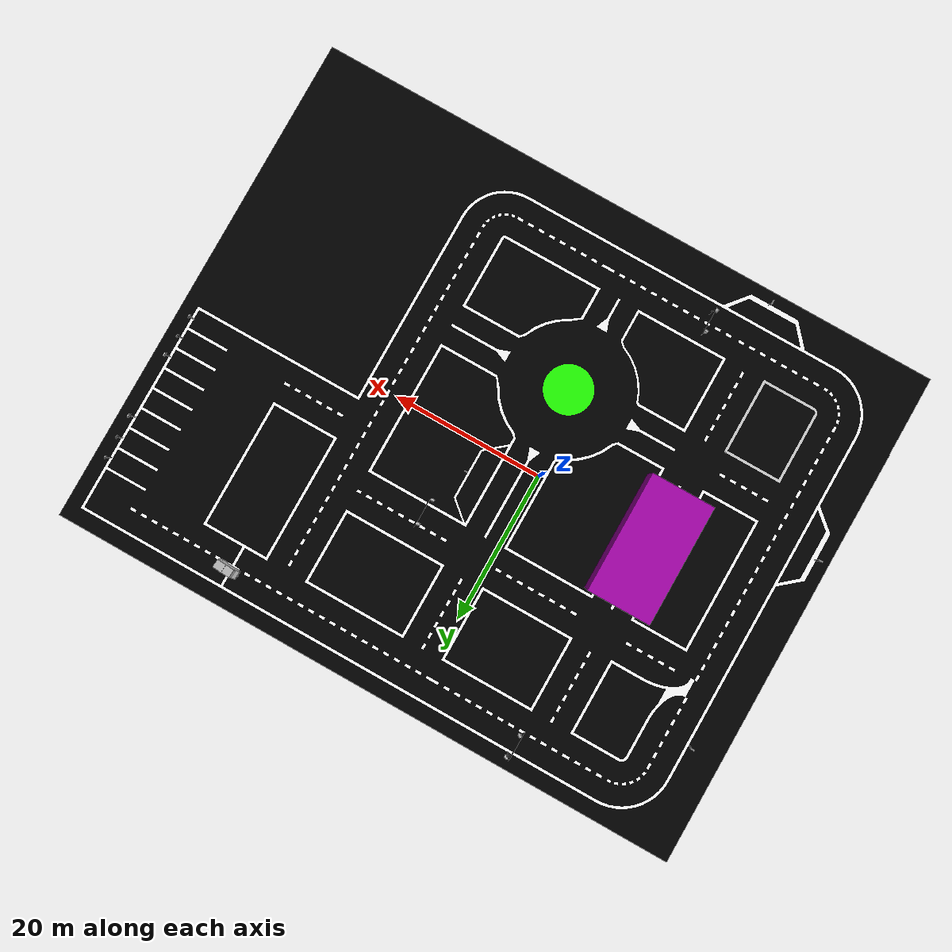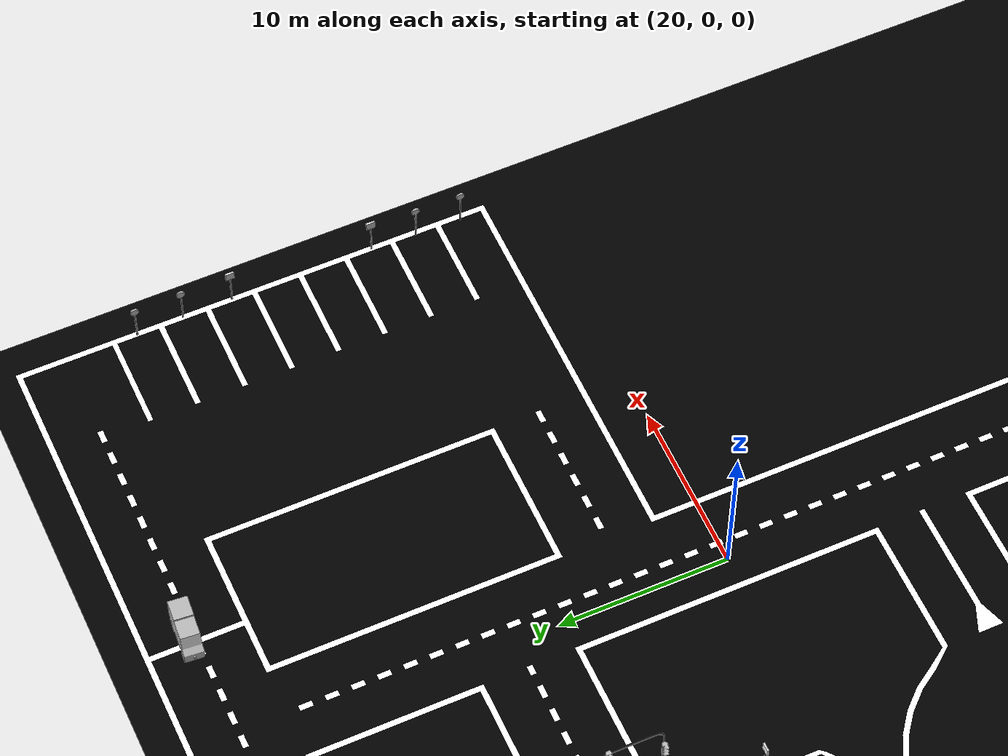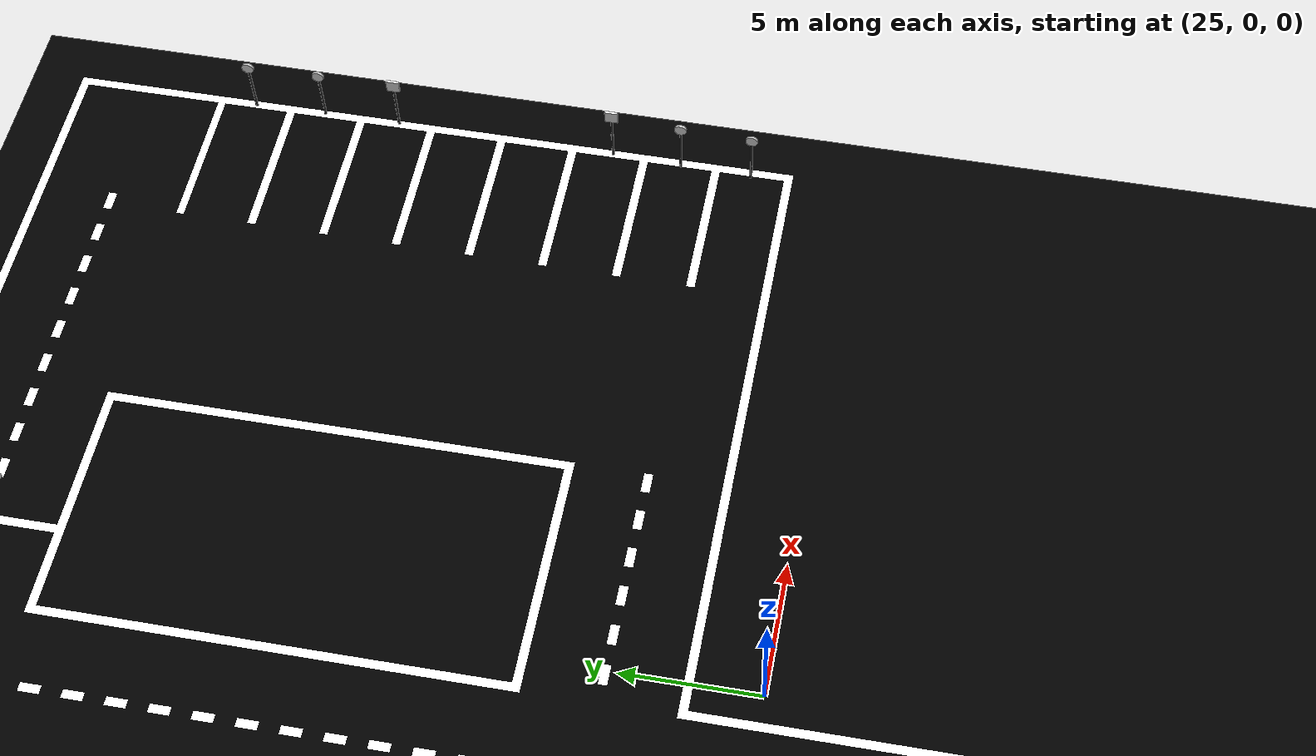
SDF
<sdf version="1.7">
 <world name="default">
  <light name="sun" type="directional">
   <pose>0 0 10 0 -0 0</pose>
   <diffuse>0.8 0.8 0.8 1</diffuse>
   <specular>0.2 0.2 0.2 1</specular>
   <attenuation>
    <range>1000</range>
    <constant>0.9</constant>
    <linear>0.01</linear>
    <quadratic>0.001</quadratic>
   </attenuation>
   <direction>-0.5 0.1 -0.9</direction>
   <spot><inner_angle>0</inner_angle><outer_angle>0</outer_angle><falloff>0</falloff></spot>
  </light>
  <gravity>0 0 -9.8</gravity>
  <magnetic_field>6e-06 2.3e-05 -4.2e-05</magnetic_field>
  <atmosphere type="adiabatic"/>
  <physics type="ode">
   <max_step_size>0.001</max_step_size>
   <real_time_factor>1</real_time_factor>
   <real_time_update_rate>1000</real_time_update_rate>
  </physics>
  <scene><ambient>0.4 0.4 0.4 1</ambient><background>0.7 0.7 0.7 1</background><shadows>1</shadows></scene>
  <spherical_coordinates>
   <surface_model>EARTH_WGS84</surface_model>
   <latitude_deg>0</latitude_deg>
   <longitude_deg>0</longitude_deg>
   <elevation>0</elevation>
   <heading_deg>0</heading_deg>
  </spherical_coordinates>
  <model name="road">
   <static>1</static>
   <link name="link">
    <collision name="collision">
     <geometry><mesh><uri>model://road/meshes/road_full0.dae</uri><scale>1 1 1</scale></mesh></geometry>
    </collision>
    <visual name="visual">
     <geometry><mesh><uri>model://road/meshes/road_full0.dae</uri><scale>1 1 1</scale></mesh></geometry>
    </visual>
   </link>
   <pose>11.9855 3.13939 0 0 -0 0</pose>
  </model>
  <light name="user_directional_light_0" type="directional">
   <pose>-2.50538 -21.004 1 0 -0 0</pose>
   <diffuse>0.5 0.5 0.5 1</diffuse>
   <specular>0.1 0.1 0.1 1</specular>
   <direction>0.1 0.1 -0.9</direction>
   <attenuation>
    <range>20</range>
    <constant>0.5</constant>
    <linear>0.01</linear>
    <quadratic>0.001</quadratic>
   </attenuation>
   <spot><inner_angle>0</inner_angle><outer_angle>0</outer_angle><falloff>0</falloff></spot>
  </light>
  <light name="user_directional_light_0_clone" type="directional">
   <pose>-3.87677 -20.3859 1 0 -0 0</pose>
   <diffuse>0.5 0.5 0.5 1</diffuse>
   <specular>0.1 0.1 0.1 1</specular>
   <direction>0.109764 0.109764 -0.987878</direction>
   <attenuation>
    <range>20</range>
    <constant>0.5</constant>
    <linear>0.01</linear>
    <quadratic>0.001</quadratic>
   </attenuation>
   <spot><inner_angle>0</inner_angle><outer_angle>0</outer_angle><falloff>0</falloff></spot>
  </light>
  <light name="user_directional_light_0_clone_1" type="directional">
   <pose>-6.43132 -21.3669 1 0 -0 0</pose>
   <diffuse>0.5 0.5 0.5 1</diffuse>
   <specular>0.1 0.1 0.1 1</specular>
   <direction>0.109764 0.109764 -0.987878</direction>
   <attenuation>
    <range>20</range>
    <constant>0.5</constant>
    <linear>0.01</linear>
    <quadratic>0.001</quadratic>
   </attenuation>
   <spot><inner_angle>0</inner_angle><outer_angle>0</outer_angle><falloff>0</falloff></spot>
  </light>
  <light name="user_directional_light_0_clone_0" type="directional">
   <pose>-8.74032 -21.6667 1 0 -0 0</pose>
   <diffuse>0.5 0.5 0.5 1</diffuse>
   <specular>0.1 0.1 0.1 1</specular>
   <direction>0.109764 0.109764 -0.987878</direction>
   <attenuation>
    <range>20</range>
    <constant>0.5</constant>
    <linear>0.01</linear>
    <quadratic>0.001</quadratic>
   </attenuation>
   <spot><inner_angle>0</inner_angle><outer_angle>0</outer_angle><falloff>0</falloff></spot>
  </light>
  <model name="Sign Parkyasak">
   <static>1</static>
   <link name="link">
    <collision name="collision">
     <geometry><mesh><uri>model://sign_parkyasak/meshes/model.dae</uri><scale>1 1 1</scale></mesh></geometry>
    </collision>
    <visual name="visual">
     <geometry><mesh><uri>model://sign_parkyasak/meshes/model.dae</uri><scale>1 1 1</scale></mesh></geometry>
    </visual>
   </link>
   <pose>46.4175 4 0 0 0 -3.14159</pose>
  </model>
  <model name="Sign Parkyapilmaz">
   <static>1</static>
   <link name="link">
    <collision name="collision">
     <geometry><mesh><uri>model://sign_parkyapilmaz/meshes/model.dae</uri><scale>1 1 1</scale></mesh></geometry>
    </collision>
    <visual name="visual">
     <geometry><mesh><uri>model://sign_parkyapilmaz/meshes/model.dae</uri><scale>1 1 1</scale></mesh></geometry>
    </visual>
   </link>
   <pose>46.4875 6.73627 0 0 -0 3.14159</pose>
  </model>
  <model name="Sign Engelli">
   <static>1</static>
   <link name="link">
    <collision name="collision">
     <geometry><mesh><uri>model://sign_engelli/meshes/model.dae</uri><scale>1 1 1</scale></mesh></geometry>
    </collision>
    <visual name="visual">
     <geometry><mesh><uri>model://sign_engelli/meshes/model.dae</uri><scale>1 1 1</scale></mesh></geometry>
    </visual>
   </link>
   <pose>46.6344 9.43355 0 0 0 -3.14159</pose>
  </model>
  <model name="Sign Engelli_clone">
   <static>1</static>
   <link name="link">
    <collision name="collision">
     <geometry><mesh><uri>model://sign_engelli/meshes/model.dae</uri><scale>1 1 1</scale></mesh></geometry>
    </collision>
    <visual name="visual">
     <geometry><mesh><uri>model://sign_engelli/meshes/model.dae</uri><scale>1 1 1</scale></mesh></geometry>
    </visual>
   </link>
   <pose>46.6759 17.9566 0 0 0 -3.14159</pose>
  </model>
  <model name="Sign Parkyapilmaz_clone">
   <static>1</static>
   <link name="link">
    <collision name="collision">
     <geometry><mesh><uri>model://sign_parkyapilmaz/meshes/model.dae</uri><scale>1 1 1</scale></mesh></geometry>
    </collision>
    <visual name="visual">
     <geometry><mesh><uri>model://sign_parkyapilmaz/meshes/model.dae</uri><scale>1 1 1</scale></mesh></geometry>
    </visual>
   </link>
   <pose>46.6598 20.9187 0 0 -0 3.14159</pose>
  </model>
  <model name="Sign Parkyasak_clone">
   <static>1</static>
   <link name="link">
    <collision name="collision">
     <geometry><mesh><uri>model://sign_parkyasak/meshes/model.dae</uri><scale>1 1 1</scale></mesh></geometry>
    </collision>
    <visual name="visual">
     <geometry><mesh><uri>model://sign_parkyasak/meshes/model.dae</uri><scale>1 1 1</scale></mesh></geometry>
    </visual>
   </link>
   <pose>46.6016 23.6859 0 0 0 -3.14159</pose>
  </model>
  <model name="Sign Durak">
   <static>1</static>
   <link name="link">
    <collision name="collision">
     <geometry><mesh><uri>model://sign_durak/meshes/model.dae</uri><scale>1 1 1</scale></mesh></geometry>
    </collision>
    <visual name="visual">
     <geometry><mesh><uri>model://sign_durak/meshes/model.dae</uri><scale>1 1 1</scale></mesh></geometry>
    </visual>
   </link>
   <pose>7.94947 3.92868 0 0 0 -1.5708</pose>
  </model>
  <model name="Sign Durak_0">
   <static>1</static>
   <link name="link">
    <collision name="collision">
     <geometry><mesh><uri>model://sign_durak/meshes/model.dae</uri><scale>1 1 1</scale></mesh></geometry>
    </collision>
    <visual name="visual">
     <geometry><mesh><uri>model://sign_durak/meshes/model.dae</uri><scale>1 1 1</scale></mesh></geometry>
    </visual>
   </link>
   <pose>-34.2486 -7.7009 0 0 -0 1.5708</pose>
  </model>
  <model name="Sign Durak_0_clone">
   <static>1</static>
   <link name="link">
    <collision name="collision">
     <geometry><mesh><uri>model://sign_durak/meshes/model.dae</uri><scale>1 1 1</scale></mesh></geometry>
    </collision>
    <visual name="visual">
     <geometry><mesh><uri>model://sign_durak/meshes/model.dae</uri><scale>1 1 1</scale></mesh></geometry>
    </visual>
   </link>
   <pose>-14.2561 -32.2097 0 0 0 -3.14159</pose>
  </model>
  <model name="Sign Ikiyon">
   <static>1</static>
   <link name="link">
    <collision name="collision">
     <geometry><mesh><uri>model://sign_ikiyon/meshes/model.dae</uri><scale>1 1 1</scale></mesh></geometry>
    </collision>
    <visual name="visual">
     <geometry><mesh><uri>model://sign_ikiyon/meshes/model.dae</uri><scale>1 1 1</scale></mesh></geometry>
    </visual>
   </link>
   <pose>-31.6764 19.3224 0 0 -0 1.5708</pose>
  </model>
  <model name="robotaksi">
   <pose>28.1344 28.2437 0.010253 -0.007152 -1e-06 1.48811</pose>
   <link name="base_link">
    <inertial>
     <inertia><ixx>1</ixx><ixy>0</ixy><ixz>0</ixz><iyy>1</iyy><iyz>0</iyz><izz>1</izz></inertia>
     <mass>1</mass>
    </inertial>
   </link>
   <joint name="chassis_link_joint" type="fixed"><parent>base_link</parent><child>chassis_link</child></joint>
   <joint name="hokuyo_joint" type="fixed">
    <parent>base_link</parent>
    <child>hokuyo_link</child>
    <axis><xyz>0 0 1</xyz><limit><lower>-1e+16</lower><upper>1e+16</upper></limit></axis>
   </joint>
   <link name="hokuyo_link">
    <sensor name="head_hokuyo_sensor" type="ray">
     <always_on>1</always_on>
     <visualize>1</visualize>
     <pose relative_to="base_link">0 2.34 0.72 0 -0 1.5708</pose>
     <update_rate>40</update_rate>
     <ray>
      <scan>
       <horizontal>
        <samples>720</samples>
        <resolution>1</resolution>
        <min_angle>-1.5708</min_angle>
        <max_angle>1.5708</max_angle>
       </horizontal>
       <vertical><samples>1</samples><min_angle>0</min_angle><max_angle>0</max_angle></vertical>
      </scan>
      <range><min>0.12</min><max>30</max><resolution>0.01</resolution></range>
      <noise><type>gaussian</type><mean>0</mean><stddev>0.01</stddev></noise>
     </ray>
     <plugin name="gazebo_ros_head_hokuyo_controller" filename="libgazebo_ros_ray_sensor.so">
      <ros><remapping>~/out:=scan</remapping></ros>
      <output_type>sensor_msgs/LaserScan</output_type>
      <frame_name>hokuyo_link</frame_name>
     </plugin>
    </sensor>
    <inertial>
     <inertia><ixx>1</ixx><ixy>0</ixy><ixz>0</ixz><iyy>1</iyy><iyz>0</iyz><izz>1</izz></inertia>
     <mass>1</mass>
    </inertial>
   </link>
   <link name="chassis_link">
    <inertial>
     <pose>1e-06 0.07307 0.65096 0 -0 0</pose>
     <mass>1580</mass>
     <inertia>
      <ixx>1997.86</ixx>
      <ixy>-3e-05</ixy>
      <ixz>-1e-06</ixz>
      <iyy>442.769</iyy>
      <iyz>62.5206</iyz>
      <izz>2238.05</izz>
     </inertia>
    </inertial>
    <collision name="chassis_link_fixed_joint_lump__chassis_link_collision">
     <pose>0 0 0.46936 0 -0 0</pose>
     <geometry>
      <mesh><scale>0.001 0.001 0.001</scale><uri>model://autocar/meshes/chassis_link.stl</uri></mesh>
     </geometry>
     <surface><friction><ode><mu>0.2</mu><mu2>0.2</mu2></ode></friction></surface>
    </collision>
    <visual name="chassis_link_fixed_joint_lump__chassis_link_visual">
     <pose>0 2.25 0 0 -0 1.57</pose>
     <geometry><mesh><uri>model://robotaksi/meshes/robotaksi_full.dae</uri></mesh></geometry>
    </visual>
    <self_collide>1</self_collide>
   </link>
   <joint name="bl_axle" type="revolute">
    <pose relative_to="chassis_link">-0.875 -1.01364 0.324997 0 -0 0</pose>
    <parent>chassis_link</parent>
    <child>bl_1</child>
    <axis>
     <xyz>-1 0 0</xyz>
     <dynamics>
      <friction>12.0316</friction>
      <spring_reference>0</spring_reference>
      <spring_stiffness>0</spring_stiffness>
     </dynamics>
     <limit><lower>-1e+16</lower><upper>1e+16</upper></limit>
    </axis>
   </joint>
   <link name="bl_1">
    <pose relative_to="bl_axle">0 0 0 0 -0 0</pose>
    <inertial>
     <pose>-0.0377 0 -0 0 -0 0</pose>
     <mass>24.5</mass>
     <inertia><ixx>1.84514</ixx><ixy>0</ixy><ixz>0</ixz><iyy>1.04961</iyy><iyz>0</iyz><izz>1.04961</izz></inertia>
    </inertial>
    <collision name="bl_1_collision">
     <pose relative_to="bl_axle">0 0 0 3.14159 1.57079 3.14159</pose>
     <geometry><cylinder><radius>0.3425</radius><length>0.22</length></cylinder></geometry>
     <surface><friction><ode><mu>1.7</mu><mu2>1.7</mu2></ode></friction></surface>
    </collision>
    <self_collide>1</self_collide>
   </link>
   <joint name="br_axle" type="revolute">
    <pose relative_to="chassis_link">0.875 -1.01364 0.324997 0 -0 0</pose>
    <parent>chassis_link</parent>
    <child>br_1</child>
    <axis>
     <xyz>-1 0 0</xyz>
     <dynamics>
      <friction>12.0316</friction>
      <spring_reference>0</spring_reference>
      <spring_stiffness>0</spring_stiffness>
     </dynamics>
     <limit><lower>-1e+16</lower><upper>1e+16</upper></limit>
    </axis>
   </joint>
   <link name="br_1">
    <pose relative_to="br_axle">0 0 0 0 -0 0</pose>
    <inertial>
     <pose>-0.0377 0 -0 0 -0 0</pose>
     <mass>24.5</mass>
     <inertia><ixx>1.84514</ixx><ixy>0</ixy><ixz>0</ixz><iyy>1.04961</iyy><iyz>0</iyz><izz>1.04961</izz></inertia>
    </inertial>
    <collision name="br_1_collision">
     <pose relative_to="br_axle">0 0 0 3.14159 1.57079 3.14159</pose>
     <geometry><cylinder><radius>0.3425</radius><length>0.22</length></cylinder></geometry>
     <surface><friction><ode><mu>1.7</mu><mu2>1.7</mu2></ode></friction></surface>
    </collision>
    <self_collide>1</self_collide>
   </link>
   <joint name="l_steer" type="revolute">
    <pose relative_to="chassis_link">-0.825 1.51736 0.324997 0 -0 0</pose>
    <parent>chassis_link</parent>
    <child>l_steer_1</child>
    <axis>
     <xyz>0 0 1</xyz>
     <limit><lower>-0.95</lower><upper>0.95</upper></limit>
     <dynamics>
      <friction>18.0474</friction>
      <spring_reference>0</spring_reference>
      <spring_stiffness>0</spring_stiffness>
     </dynamics>
    </axis>
   </joint>
   <link name="l_steer_1">
    <pose relative_to="l_steer">0 0 0 0 -0 0</pose>
    <inertial>
     <pose>0.003381 0 0.02162 0 -0 0</pose>
     <mass>1</mass>
     <inertia><ixx>1</ixx><ixy>0</ixy><ixz>0</ixz><iyy>1</iyy><iyz>0</iyz><izz>1</izz></inertia>
    </inertial>
    <self_collide>1</self_collide>
   </link>
   <joint name="fl_axle" type="revolute">
    <pose relative_to="l_steer_1">-0.05 0 0 0 -0 0</pose>
    <parent>l_steer_1</parent>
    <child>fl_1</child>
    <axis>
     <xyz>-1 0 0</xyz>
     <dynamics>
      <friction>12.0316</friction>
      <spring_reference>0</spring_reference>
      <spring_stiffness>0</spring_stiffness>
     </dynamics>
     <limit><lower>-1e+16</lower><upper>1e+16</upper></limit>
    </axis>
   </joint>
   <link name="fl_1">
    <pose relative_to="fl_axle">0 0 0 0 -0 0</pose>
    <inertial>
     <pose>-0.0377 0 -0 0 -0 0</pose>
     <mass>24.5</mass>
     <inertia><ixx>1.84514</ixx><ixy>0</ixy><ixz>0</ixz><iyy>1.04961</iyy><iyz>0</iyz><izz>1.04961</izz></inertia>
    </inertial>
    <collision name="fl_1_collision">
     <pose>0.875 -1.5174 0.1444 0 -0 0</pose>
     <geometry><mesh><scale>0.001 0.001 0.001</scale><uri>model://autocar/meshes/fl_1.stl</uri></mesh></geometry>
     <surface><friction><ode><mu>1.1</mu><mu2>1.1</mu2></ode></friction></surface>
    </collision>
    <self_collide>1</self_collide>
   </link>
   <joint name="r_steer" type="revolute">
    <pose relative_to="chassis_link">0.825 1.51736 0.324997 0 -0 0</pose>
    <parent>chassis_link</parent>
    <child>r_steer_1</child>
    <axis>
     <xyz>0 0 1</xyz>
     <limit><lower>-0.95</lower><upper>0.95</upper></limit>
     <dynamics>
      <damping>0.01</damping>
      <friction>18.0474</friction>
      <spring_reference>0</spring_reference>
      <spring_stiffness>0</spring_stiffness>
     </dynamics>
    </axis>
   </joint>
   <link name="r_steer_1">
    <pose relative_to="r_steer">0 0 0 0 -0 0</pose>
    <inertial>
     <pose>0.003381 0 0.02162 0 -0 0</pose>
     <mass>1</mass>
     <inertia><ixx>1</ixx><ixy>0</ixy><ixz>0</ixz><iyy>1</iyy><iyz>0</iyz><izz>1</izz></inertia>
    </inertial>
    <self_collide>1</self_collide>
   </link>
   <joint name="fr_axle" type="revolute">
    <pose relative_to="r_steer_1">0.05 0 0 0 -0 0</pose>
    <parent>r_steer_1</parent>
    <child>fr_1</child>
    <axis>
     <xyz>-1 0 0</xyz>
     <dynamics>
      <friction>12.0316</friction>
      <spring_reference>0</spring_reference>
      <spring_stiffness>0</spring_stiffness>
     </dynamics>
     <limit><lower>-1e+16</lower><upper>1e+16</upper></limit>
    </axis>
   </joint>
   <link name="fr_1">
    <pose relative_to="fr_axle">0 0 0 0 -0 0</pose>
    <inertial>
     <pose>-0.0377 0 -0 0 -0 0</pose>
     <mass>24.5</mass>
     <inertia><ixx>1.84514</ixx><ixy>0</ixy><ixz>0</ixz><iyy>1.04961</iyy><iyz>0</iyz><izz>1.04961</izz></inertia>
    </inertial>
    <collision name="fr_1_collision">
     <pose>-0.875 -1.5174 0.1444 0 -0 0</pose>
     <geometry><mesh><scale>0.001 0.001 0.001</scale><uri>model://autocar/meshes/fr_1.stl</uri></mesh></geometry>
     <surface><friction><ode><mu>1.7</mu><mu2>1.7</mu2></ode></friction></surface>
    </collision>
    <self_collide>1</self_collide>
   </link>
   <link name="steering_wheel">
    <inertial>
     <inertia><ixx>1</ixx><ixy>0</ixy><ixz>0</ixz><iyy>1</iyy><iyz>0</iyz><izz>1</izz></inertia>
     <mass>1</mass>
    </inertial>
   </link>
   <joint name="steering_joint" type="revolute">
    <pose>-0.002 0 0 0 -0 0</pose>
    <parent>chassis_link</parent>
    <child>steering_wheel</child>
    <axis>
     <xyz>-0.964118 0.000768 0.265556</xyz>
     <limit><lower>-100</lower><upper>100</upper></limit>
     <dynamics>
      <damping>1</damping>
      <spring_reference>0</spring_reference>
      <spring_stiffness>0</spring_stiffness>
     </dynamics>
     <use_parent_model_frame>1</use_parent_model_frame>
    </axis>
    <physics><ode><cfm_damping>1</cfm_damping><limit><cfm>0</cfm><erp>0.2</erp></limit></ode></physics>
   </joint>
   <link name="camera_link">
    <pose relative_to="base_link">0 2.34 0.72 0 -0 1.5708</pose>
    <visual name="visual"><geometry><box><size>0.1 0.1 0.1</size></box></geometry></visual>
    <sensor name="camera_sensor" type="multicamera">
     <always_on>1</always_on>
     <update_rate>100</update_rate>
     <camera name="left">
      <pose>0 -0.12 0 0 -0 0</pose>
      <horizontal_fov>1.91986</horizontal_fov>
      <image><width>672</width><height>376</height><format>R8G8B8</format></image>
      <clip><near>0.3</near><far>130</far></clip>
      <vertical_fov>1.2217304764</vertical_fov>
     </camera>
     <camera name="right">
      <pose>0 0.12 0 0 -0 0</pose>
      <horizontal_fov>1.91986</horizontal_fov>
      <image><width>672</width><height>376</height><format>R8G8B8</format></image>
      <clip><near>0.3</near><far>130</far></clip>
      <vertical_fov>1.2217304764</vertical_fov>
     </camera>
     <plugin name="camera_controller" filename="libgazebo_ros_camera.so">
      <ros><namespace>zed_cam</namespace></ros>
      <frameName>camera_link</frameName>
     </plugin>
    </sensor>
    <inertial>
     <mass>1</mass>
     <inertia><ixx>0.01</ixx><iyy>0.01</iyy><izz>0.01</izz><ixy>0</ixy><ixz>0</ixz><iyz>0</iyz></inertia>
    </inertial>
   </link>
   <joint name="camera_joint" type="fixed"><parent>chassis_link</parent><child>camera_link</child></joint>
   <plugin name="ackermann_drive" filename="libgazebo_ros_ackermann_drive.so">
    <ros>
     <namespace>autocar</namespace>
     <remapping>cmd_vel:=cmd_vel</remapping>
     <remapping>odom:=odom</remapping>
     <remapping>distance:=distance</remapping>
    </ros>
    <update_rate>100.0</update_rate>
    <front_left_joint>fl_axle</front_left_joint>
    <front_right_joint>fr_axle</front_right_joint>
    <rear_left_joint>bl_axle</rear_left_joint>
    <rear_right_joint>br_axle</rear_right_joint>
    <left_steering_joint>l_steer</left_steering_joint>
    <right_steering_joint>r_steer</right_steering_joint>
    <steering_wheel_joint>steering_joint</steering_wheel_joint>
    <max_steer>0.85</max_steer>
    <max_steering_angle>7.85</max_steering_angle>
    <max_speed>20</max_speed>
    <left_steering_pid_gain>4000 0 1</left_steering_pid_gain>
    <left_steering_i_range>0 0</left_steering_i_range>
    <right_steering_pid_gain>4000 0 1</right_steering_pid_gain>
    <right_steering_i_range>0 0</right_steering_i_range>
    <linear_velocity_pid_gain>4000 0 1</linear_velocity_pid_gain>
    <linear_velocity_i_range>0 0</linear_velocity_i_range>
    <publish_odom>1</publish_odom>
    <publish_odom_tf>1</publish_odom_tf>
    <publish_wheel_tf>1</publish_wheel_tf>
    <publish_distance>1</publish_distance>
    <odometry_frame>odom</odometry_frame>
    <robot_base_frame>base_link</robot_base_frame>
   </plugin>
   <link name="imu_link">
    <sensor name="imu_sensor" type="imu">
     <always_on>true</always_on>
     <visualize>true</visualize>
     <update_rate>100</update_rate>
     <pose relative_to="chassis">0 0 0 0 0 0</pose>
     <plugin name="imu_plugin" filename="libgazebo_ros_imu_sensor.so">
      <ros><namespace>/imu</namespace><remapping>~/out:=data</remapping></ros>
      <frameName>imu_link</frameName>
     </plugin>
    </sensor>
   </link>
   <joint name="imu_joint" type="fixed"><parent>chassis</parent><child>imu_link</child></joint>
  </model>
  <model name="tunnel">
   <static>1</static>
   <link name="link">
    <collision name="collision">
     <geometry><mesh><uri>model://tunnel/meshes/model.dae</uri><scale>1 1 1</scale></mesh></geometry>
    </collision>
    <visual name="visual">
     <geometry><mesh><uri>model://tunnel/meshes/model.dae</uri><scale>1 1 1</scale></mesh></geometry>
    </visual>
   </link>
   <pose>-15.6239 1.4043 0 0 -0 0</pose>
  </model>
  <model name="traffic_light_red">
   <static>1</static>
   <link name="link">
    <collision name="collision">
     <geometry><mesh><uri>model://traffic_light_red/meshes/model.dae</uri><scale>1 1 1</scale></mesh></geometry>
    </collision>
    <visual name="visual">
     <geometry><mesh><uri>model://traffic_light_red/meshes/model.dae</uri><scale>1 1 1</scale></mesh></geometry>
    </visual>
   </link>
   <pose>-0.208598 0.040928 0 0 -0 0</pose>
  </model>
  <light name="user_point_light_0" type="point">
   <pose>-2.87574 31.2721 1 0 -0 0</pose>
   <diffuse>0.5 0.5 0.5 1</diffuse>
   <specular>0.1 0.1 0.1 1</specular>
   <attenuation>
    <range>20</range>
    <constant>0.5</constant>
    <linear>0.01</linear>
    <quadratic>0.001</quadratic>
   </attenuation>
   <cast_shadows>0</cast_shadows>
   <direction>0 0 -1</direction>
  </light>
  <light name="user_point_light_0_clone" type="point">
   <pose>-25.5193 -0.390008 4.57199 0 -0 0</pose>
   <diffuse>0.5 0.5 0.5 1</diffuse>
   <specular>0.1 0.1 0.1 1</specular>
   <direction>0 0 -1</direction>
   <attenuation>
    <range>20</range>
    <constant>0.5</constant>
    <linear>0.01</linear>
    <quadratic>0.001</quadratic>
   </attenuation>
   <cast_shadows>0</cast_shadows>
  </light>
  <light name="user_point_light_0_clone_0" type="point">
   <pose>14.3997 10.013 4.57199 0 -0 0</pose>
   <diffuse>0.5 0.5 0.5 1</diffuse>
   <specular>0.1 0.1 0.1 1</specular>
   <direction>0 0 -1</direction>
   <attenuation>
    <range>20</range>
    <constant>0.5</constant>
    <linear>0.01</linear>
    <quadratic>0.001</quadratic>
   </attenuation>
   <cast_shadows>0</cast_shadows>
  </light>
  <light name="user_point_light_0_clone_1" type="point">
   <pose>10.4888 11.5878 4.57199 0 -0 0</pose>
   <diffuse>0.5 0.5 0.5 1</diffuse>
   <specular>0.1 0.1 0.1 1</specular>
   <direction>0 0 -1</direction>
   <attenuation>
    <range>20</range>
    <constant>0.5</constant>
    <linear>0.01</linear>
    <quadratic>0.001</quadratic>
   </attenuation>
   <cast_shadows>0</cast_shadows>
  </light>
  <light name="user_point_light_0_clone_2" type="point">
   <pose>12.5303 9.76976 4.57199 0 -0 0</pose>
   <diffuse>0.5 0.5 0.5 1</diffuse>
   <specular>0.1 0.1 0.1 1</specular>
   <direction>0 0 -1</direction>
   <attenuation>
    <range>20</range>
    <constant>0.5</constant>
    <linear>0.01</linear>
    <quadratic>0.001</quadratic>
   </attenuation>
   <cast_shadows>0</cast_shadows>
  </light>
 </world>
</sdf>
